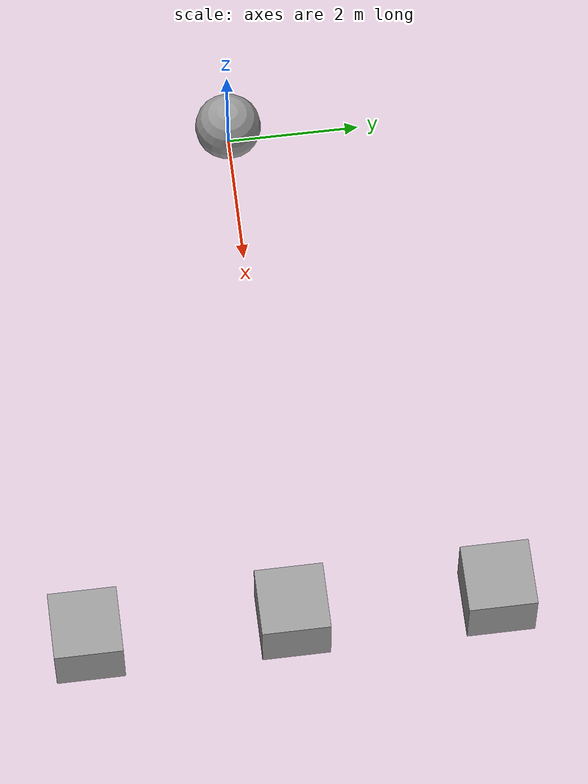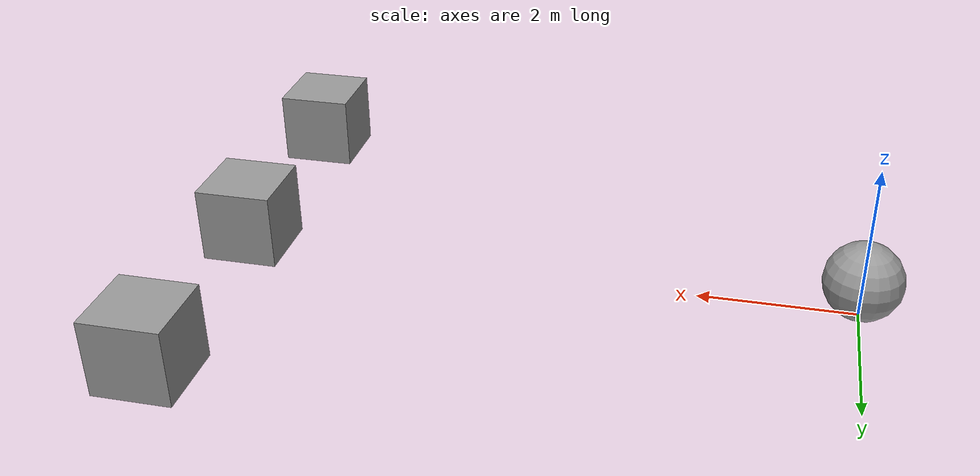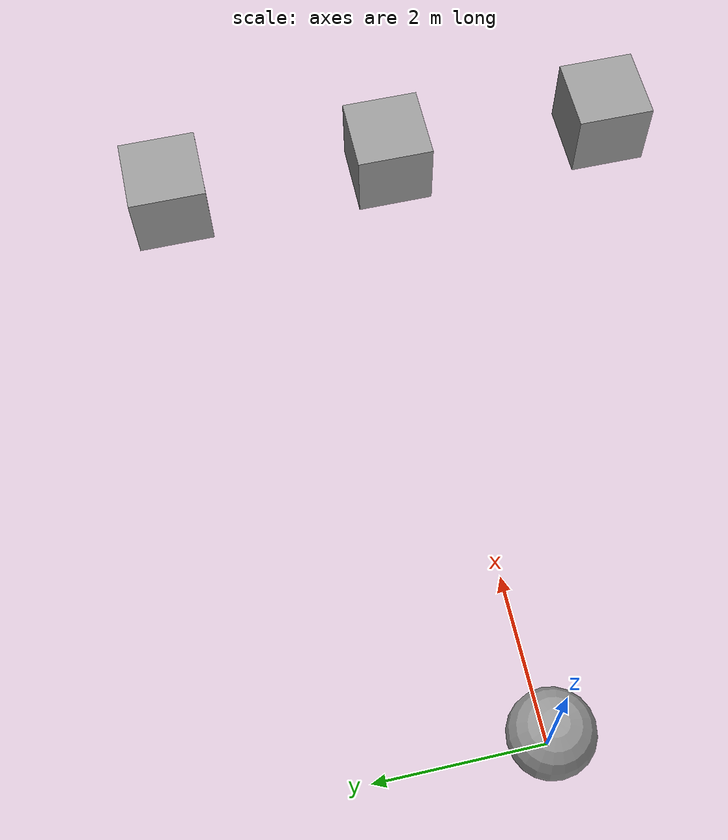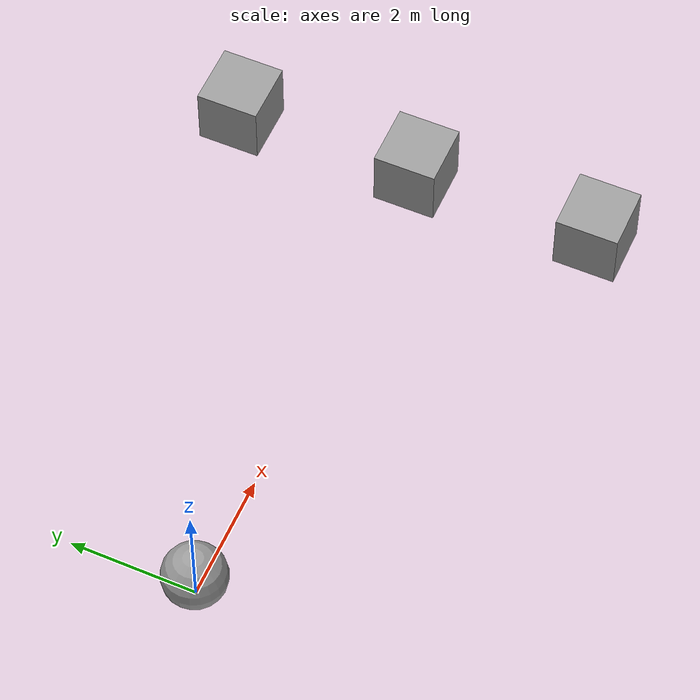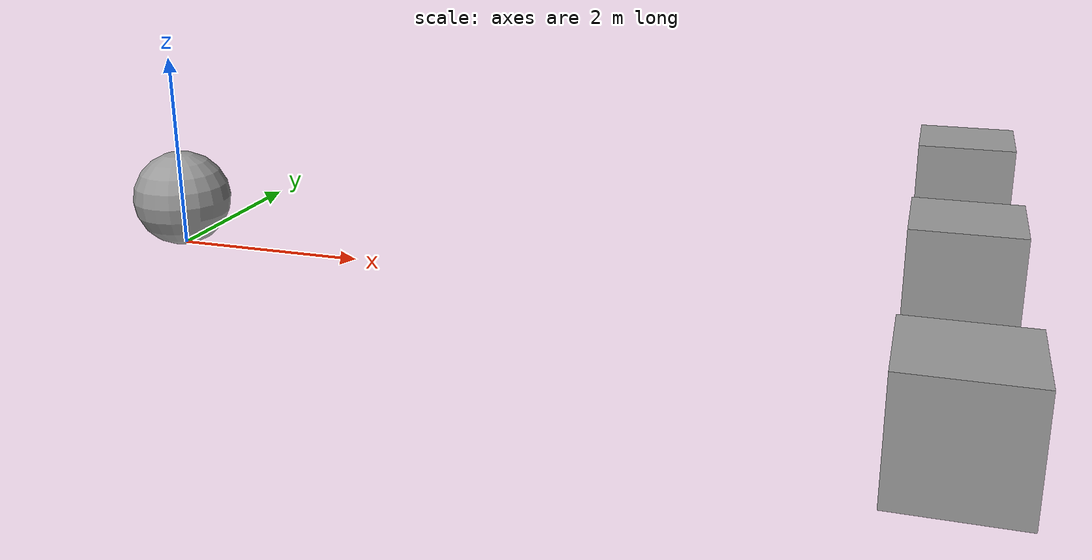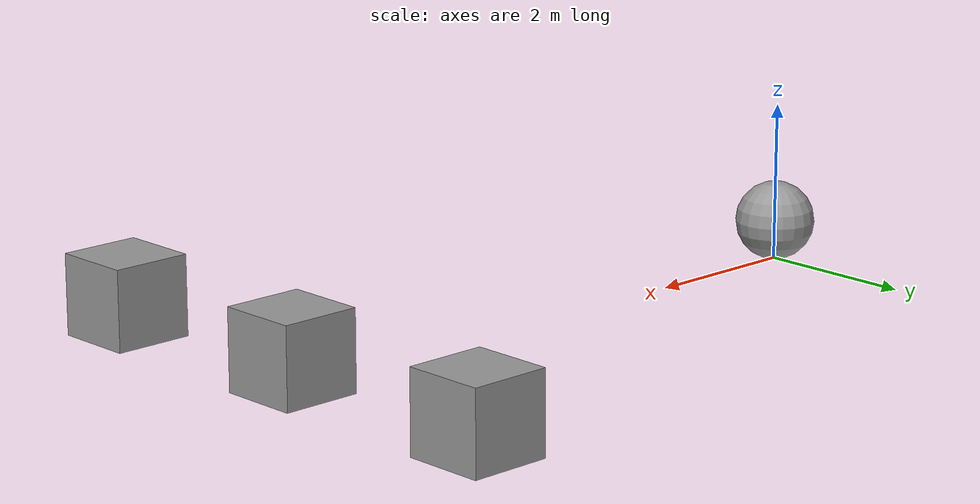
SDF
<sdf version="1.6">
 <world name="default">
  <scene>
   <grid>0</grid>
   <ambient>0.4 0.4 0.4 1</ambient>
   <background>0.7 0.7 0.7 1</background>
   <shadows>1</shadows>
  </scene>
  <light name="sun" type="directional">
   <pose>0 0 10 0 -0 0</pose>
   <diffuse>0.8 0.8 0.8 1</diffuse>
   <specular>0.1 0.1 0.1 1</specular>
   <attenuation>
    <range>1000</range>
    <constant>0.9</constant>
    <linear>0.01</linear>
    <quadratic>0.001</quadratic>
   </attenuation>
   <direction>-0.5 0.5 -1</direction>
  </light>
  <model name="ground">
   <link name="body">
    <collision name="geom">
     <geometry><plane><normal>0 0 1</normal><size>1 1</size></plane></geometry>
     <surface><friction><ode><mu>100</mu><mu2>50</mu2></ode></friction></surface>
    </collision>
   </link>
   <static>1</static>
  </model>
  <gravity>0 0 -9.8</gravity>
  <magnetic_field>6e-06 2.3e-05 -4.2e-05</magnetic_field>
  <atmosphere type="adiabatic"/>
  <physics name="default_physics" default="0" type="ode">
   <max_step_size>0.001</max_step_size>
   <real_time_factor>1</real_time_factor>
   <real_time_update_rate>1000</real_time_update_rate>
  </physics>
  <spherical_coordinates>
   <surface_model>EARTH_WGS84</surface_model>
   <latitude_deg>0</latitude_deg>
   <longitude_deg>0</longitude_deg>
   <elevation>0</elevation>
   <heading_deg>0</heading_deg>
  </spherical_coordinates>
  <model name="ballOfDoom_0">
   <link name="link">
    <sensor name="contact_sensor" type="contact">
     <always_on>1</always_on>
     <update_rate>30.0</update_rate>
     <contact><collision>link_collision</collision><topic>__default_topic__</topic></contact>
     <plugin name="bumper_plugin" filename="libgazebo_ros_bumper.so">
      <bumperTopicName>contact_state</bumperTopicName>
     </plugin>
    </sensor>
    <inertial>
     <mass>1</mass>
     <inertia><ixx>0.1</ixx><ixy>0</ixy><ixz>0</ixz><iyy>0.1</iyy><iyz>0</iyz><izz>0.1</izz></inertia>
    </inertial>
    <visual name="link_visual">
     <geometry><sphere><radius>0.5</radius></sphere></geometry>
     <material>
      <script><name>Gazebo/Grey</name><uri>file://media/materials/scripts/gazebo.material</uri></script>
      <ambient>0.3 0.3 0.3 1</ambient>
      <diffuse>0.7 0.7 0.7 1</diffuse>
      <specular>0.01 0.01 0.01 1</specular>
      <emissive>0 0 0 1</emissive>
     </material>
    </visual>
    <collision name="link_collision">
     <geometry><sphere><radius>0.5</radius></sphere></geometry>
     <surface>
      <friction>
       <ode><mu>1</mu><mu2>1</mu2><fdir1>0 0 0</fdir1><slip1>0</slip1><slip2>0</slip2></ode>
       <torsional>
        <coefficient>1</coefficient>
        <patch_radius>0</patch_radius>
        <surface_radius>0</surface_radius>
        <use_patch_radius>1</use_patch_radius>
        <ode><slip>0</slip></ode>
       </torsional>
      </friction>
      <bounce><restitution_coefficient>0</restitution_coefficient><threshold>1e+06</threshold></bounce>
      <contact>
       <collide_without_contact>0</collide_without_contact>
       <collide_without_contact_bitmask>1</collide_without_contact_bitmask>
       <collide_bitmask>1</collide_bitmask>
       <ode>
        <soft_cfm>0</soft_cfm>
        <soft_erp>0.2</soft_erp>
        <kp>1e+13</kp>
        <kd>1</kd>
        <max_vel>0.01</max_vel>
        <min_depth>0</min_depth>
       </ode>
       <bullet>
        <split_impulse>1</split_impulse>
        <split_impulse_penetration_threshold>-0.01</split_impulse_penetration_threshold>
        <soft_cfm>0</soft_cfm>
        <soft_erp>0.2</soft_erp>
        <kp>1e+13</kp>
        <kd>1</kd>
       </bullet>
      </contact>
     </surface>
    </collision>
   </link>
   <link name="link_0">
    <pose>8 -3 0 0 -0 0</pose>
    <inertial>
     <mass>1</mass>
     <inertia>
      <ixx>0.166667</ixx>
      <ixy>0</ixy>
      <ixz>0</ixz>
      <iyy>0.166667</iyy>
      <iyz>0</iyz>
      <izz>0.166667</izz>
     </inertia>
    </inertial>
    <visual name="link0_visual">
     <geometry><box><size>1 1 1</size></box></geometry>
     <material>
      <lighting>1</lighting>
      <script><uri>file://media/materials/scripts/gazebo.material</uri><name>Gazebo/Grey</name></script>
      <ambient>0.3 0.3 0.3 1</ambient>
      <diffuse>0.7 0.7 0.7 1</diffuse>
      <specular>0.01 0.01 0.01 1</specular>
      <emissive>0 0 0 1</emissive>
     </material>
    </visual>
    <collision name="link0_collision">
     <geometry><box><size>1 1 1</size></box></geometry>
     <surface>
      <friction>
       <ode><mu>1</mu><mu2>1</mu2><fdir1>0 0 0</fdir1><slip1>0</slip1><slip2>0</slip2></ode>
       <torsional>
        <coefficient>1</coefficient>
        <patch_radius>0</patch_radius>
        <surface_radius>0</surface_radius>
        <use_patch_radius>1</use_patch_radius>
        <ode><slip>0</slip></ode>
       </torsional>
      </friction>
      <bounce><restitution_coefficient>0</restitution_coefficient><threshold>1e+06</threshold></bounce>
      <contact>
       <collide_without_contact>0</collide_without_contact>
       <collide_without_contact_bitmask>1</collide_without_contact_bitmask>
       <collide_bitmask>1</collide_bitmask>
       <ode>
        <soft_cfm>0</soft_cfm>
        <soft_erp>0.2</soft_erp>
        <kp>1e+13</kp>
        <kd>1</kd>
        <max_vel>0.01</max_vel>
        <min_depth>0</min_depth>
       </ode>
       <bullet>
        <split_impulse>1</split_impulse>
        <split_impulse_penetration_threshold>-0.01</split_impulse_penetration_threshold>
        <soft_cfm>0</soft_cfm>
        <soft_erp>0.2</soft_erp>
        <kp>1e+13</kp>
        <kd>1</kd>
       </bullet>
      </contact>
     </surface>
    </collision>
   </link>
   <link name="link_1">
    <pose>8 0 0 0 -0 0</pose>
    <inertial>
     <mass>1</mass>
     <inertia>
      <ixx>0.166667</ixx>
      <ixy>0</ixy>
      <ixz>0</ixz>
      <iyy>0.166667</iyy>
      <iyz>0</iyz>
      <izz>0.166667</izz>
     </inertia>
    </inertial>
    <visual name="link1_visual">
     <geometry><box><size>1 1 1</size></box></geometry>
     <material>
      <lighting>1</lighting>
      <script><uri>file://media/materials/scripts/gazebo.material</uri><name>Gazebo/Grey</name></script>
      <ambient>0.3 0.3 0.3 1</ambient>
      <diffuse>0.7 0.7 0.7 1</diffuse>
      <specular>0.01 0.01 0.01 1</specular>
      <emissive>0 0 0 1</emissive>
     </material>
    </visual>
    <collision name="link1_collision">
     <geometry><box><size>1 1 1</size></box></geometry>
     <surface>
      <friction>
       <ode><mu>1</mu><mu2>1</mu2><fdir1>0 0 0</fdir1><slip1>0</slip1><slip2>0</slip2></ode>
       <torsional>
        <coefficient>1</coefficient>
        <patch_radius>0</patch_radius>
        <surface_radius>0</surface_radius>
        <use_patch_radius>1</use_patch_radius>
        <ode><slip>0</slip></ode>
       </torsional>
      </friction>
      <bounce><restitution_coefficient>0</restitution_coefficient><threshold>1e+06</threshold></bounce>
      <contact>
       <collide_without_contact>0</collide_without_contact>
       <collide_without_contact_bitmask>1</collide_without_contact_bitmask>
       <collide_bitmask>1</collide_bitmask>
       <ode>
        <soft_cfm>0</soft_cfm>
        <soft_erp>0.2</soft_erp>
        <kp>1e+13</kp>
        <kd>1</kd>
        <max_vel>0.01</max_vel>
        <min_depth>0</min_depth>
       </ode>
       <bullet>
        <split_impulse>1</split_impulse>
        <split_impulse_penetration_threshold>-0.01</split_impulse_penetration_threshold>
        <soft_cfm>0</soft_cfm>
        <soft_erp>0.2</soft_erp>
        <kp>1e+13</kp>
        <kd>1</kd>
       </bullet>
      </contact>
     </surface>
    </collision>
   </link>
   <link name="link_2">
    <pose>8 3 0 0 -0 0</pose>
    <inertial>
     <mass>1</mass>
     <inertia>
      <ixx>0.166667</ixx>
      <ixy>0</ixy>
      <ixz>0</ixz>
      <iyy>0.166667</iyy>
      <iyz>0</iyz>
      <izz>0.166667</izz>
     </inertia>
    </inertial>
    <visual name="link2_visual">
     <geometry><box><size>1 1 1</size></box></geometry>
     <material>
      <lighting>1</lighting>
      <script><uri>file://media/materials/scripts/gazebo.material</uri><name>Gazebo/Grey</name></script>
      <ambient>0.3 0.3 0.3 1</ambient>
      <diffuse>0.7 0.7 0.7 1</diffuse>
      <specular>0.01 0.01 0.01 1</specular>
      <emissive>0 0 0 1</emissive>
     </material>
    </visual>
    <collision name="link2_collision">
     <geometry><box><size>1 1 1</size></box></geometry>
     <surface>
      <friction>
       <ode><mu>1</mu><mu2>1</mu2><fdir1>0 0 0</fdir1><slip1>0</slip1><slip2>0</slip2></ode>
       <torsional>
        <coefficient>1</coefficient>
        <patch_radius>0</patch_radius>
        <surface_radius>0</surface_radius>
        <use_patch_radius>1</use_patch_radius>
        <ode><slip>0</slip></ode>
       </torsional>
      </friction>
      <bounce><restitution_coefficient>0</restitution_coefficient><threshold>1e+06</threshold></bounce>
      <contact>
       <collide_without_contact>0</collide_without_contact>
       <collide_without_contact_bitmask>1</collide_without_contact_bitmask>
       <collide_bitmask>1</collide_bitmask>
       <ode>
        <soft_cfm>0</soft_cfm>
        <soft_erp>0.2</soft_erp>
        <kp>1e+13</kp>
        <kd>1</kd>
        <max_vel>0.01</max_vel>
        <min_depth>0</min_depth>
       </ode>
       <bullet>
        <split_impulse>1</split_impulse>
        <split_impulse_penetration_threshold>-0.01</split_impulse_penetration_threshold>
        <soft_cfm>0</soft_cfm>
        <soft_erp>0.2</soft_erp>
        <kp>1e+13</kp>
        <kd>1</kd>
       </bullet>
      </contact>
     </surface>
    </collision>
   </link>
   <static>0</static>
   <pose>0 0 0.5 0 -0 0</pose>
  </model>
 </world>
</sdf>
